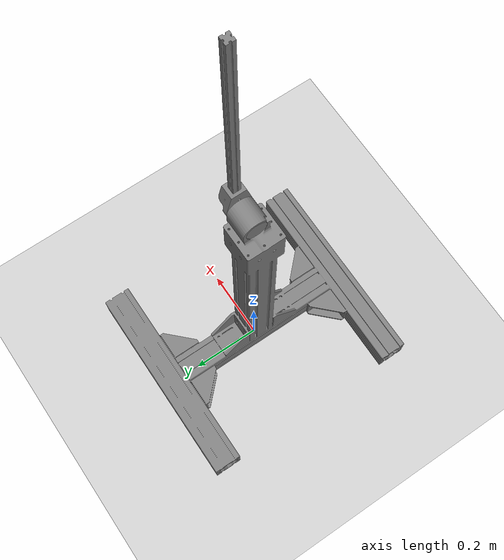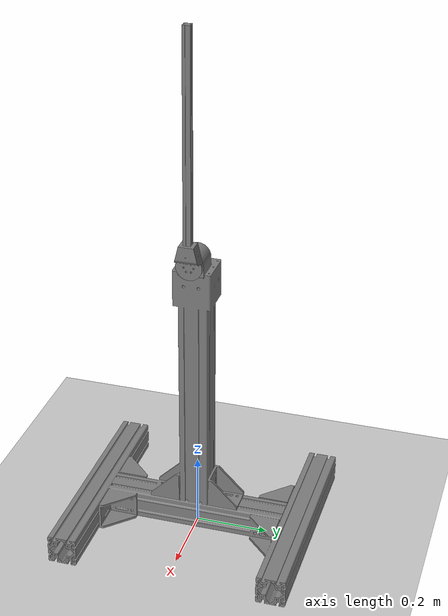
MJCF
<?xml version="1.0"?>
<mujoco model="Test_with_scene">
  <compiler angle="radian"/>

  <!-- 1) Pull in your robot definition -->
  <include file="text.xml"/>

  <!-- 2) Statistics panel in the upper-left -->
  <statistic center="0 0 0.43" extent="0.85" meansize="0.05"/>

  <!-- 3) Global visual settings -->
  <visual>
    <!-- soften the headlight and add a little ambient fill -->
    <headlight diffuse="0.6 0.6 0.6" ambient="0.3 0.3 0.3" specular="0 0 0"/>
    <!-- subtle atmospheric haze -->
    <rgba haze="0.15 0.25 0.35 1"/>
    <!-- camera defaults -->
    <global azimuth="160" elevation="-10"/>
    <!-- nicer shadows -->
    <quality shadowsize="8192"/>
  </visual>

  <!-- 4) Skybox + groundplane textures -->
  <asset>
    <!-- gradient sky -->
    <texture type="skybox"
             builtin="gradient"
             rgb1="0.3 0.5 0.7"
             rgb2="0 0 0"
             width="512" height="3072"/>
    <!-- checker-board ground -->
    <texture type="2d"
             name="groundplane"
             builtin="checker"
             mark="edge"
             rgb1="0.2 0.3 0.4"
             rgb2="0.1 0.2 0.3"
             markrgb="0.8 0.8 0.8"
             width="300" height="300"/>
    <material name="groundplane"
              texture="groundplane"
              texuniform="true"
              texrepeat="5 5"
              reflectance="0.2"/>
  </asset>

  <!-- 5) Floor & one extra light in the world -->
  <worldbody>
    <!-- subtle fill light from above -->
    <light pos="0 0 1.5" dir="0 0 -1" directional="true"/>
    <!-- checker floor -->
    <geom name="floor"
          type="plane"
          size="0 0 0.05"
          material="groundplane"/>
  </worldbody>
</mujoco>

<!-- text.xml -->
<mujoco model="Test">
  <compiler angle="radian" inertiafromgeom="false"/>
  <option gravity="0 0 -9.81" timestep="0.001"/>

  <!-- assets -->
  <asset>
    <mesh name="base_link"      file="meshes/base_link.stl"      scale="0.001 0.001 0.001"/>
    <mesh name="shaft_1"        file="meshes/shaft_1.stl"        scale="0.001 0.001 0.001"/>
    <mesh name="shaft_holder_1" file="meshes/shaft_holder_1.stl" scale="0.001 0.001 0.001"/>
    <mesh name="motor_1"        file="meshes/motor_1.stl"        scale="0.001 0.001 0.001"/>
  </asset>

  <worldbody>
    <!-- floor -->
    <geom type="plane" pos="0 0 0" size="10 10 0.1" rgba="0.8 0.8 0.8 1"/>

    <!-- main directional light (softer) -->
    <light directional="true"
           pos="0 0 5"
           dir="0 0 -1"
           diffuse="0.6 0.6 0.6"
           specular="0.1 0.1 0.1"
           castshadow="true"/>

    <!-- fill light to lift shadows -->
    <light directional="false"
           pos="2 2 3"
           dir="0 0 -1"
           diffuse="0.3 0.3 0.3"
           specular="0 0 0"
           castshadow="false"/>

    <!-- base_link -->
    <body name="base_link" pos="0 0 0">
      <inertial
        pos="0.0004208459566384093 -0.00044118953072505465 0.19492272776918843"
        mass="20.48580845402666"
        fullinertia="2.220232 0.000808 -0.00497 1.624764 0.003649 1.140571"/>
      <geom type="mesh" mesh="base_link" pos="0 0 0" quat="1 0 0 0"/>
      <geom type="mesh" mesh="base_link" pos="0 0 0" quat="1 0 0 0" contype="0" conaffinity="0"/>

      <!-- motor_1 -->
      <body name="motor_1" pos="-0.009823 -0.001851 0.825665">
        <inertial
          pos="0.028557231053538294 -0.00003864820265166375 0.00001537512316851508"
          mass="1.058015460717901"
          fullinertia="0.000397 -0.000001 0.0 0.000489 -0.000002 0.000486"/>
        <geom type="mesh" mesh="motor_1" pos="0.009823 0.001851 -0.825665" quat="1 0 0 0"/>
        <geom type="mesh" mesh="motor_1" pos="0.009823 0.001851 -0.825665" quat="1 0 0 0" contype="0" conaffinity="0"/>

        <!-- shaft_holder_1 with hinge -->
        <body name="shaft_holder_1" pos="0.0605 0 0">
          <joint name="revolute_2" type="hinge" axis="1 0 0"/>
          <inertial
            pos="0.020465972265897622 -0.000006465197970995486 0.021946176397610095"
            mass="0.13589194771648735"
            fullinertia="0.00013 0.0 -0.00002 0.00011 0.0 0.000057"/>
          <geom type="mesh" mesh="shaft_holder_1" pos="-0.050677 0.001851 -0.825665" quat="1 0 0 0"/>
          <geom type="mesh" mesh="shaft_holder_1" pos="-0.050677 0.001851 -0.825665" quat="1 0 0 0" contype="0" conaffinity="0"/>

          <!-- shaft_1 fixed -->
          <body name="shaft_1" pos="0.025 0 0.024002">
            <inertial
              pos="0.00000032666438987138946 0.000008262286244737531 0.29999988098059216"
              mass="0.5672592000000012"
              fullinertia="0.017037 0.0 0.0 0.017037 0.0 0.000039"/>
            <geom type="mesh" mesh="shaft_1" pos="-0.075677 0.001851 -0.849667" quat="1 0 0 0"/>
            <geom type="mesh" mesh="shaft_1" pos="-0.075677 0.001851 -0.849667" quat="1 0 0 0" contype="0" conaffinity="0"/>
          </body>
        </body>
      </body>
    </body>
  </worldbody>

  <!-- actuators (must be outside worldbody) -->
  <actuator>
    <motor joint="revolute_2" gear="100" ctrlrange="-1 1"/>
  </actuator>
</mujoco>
